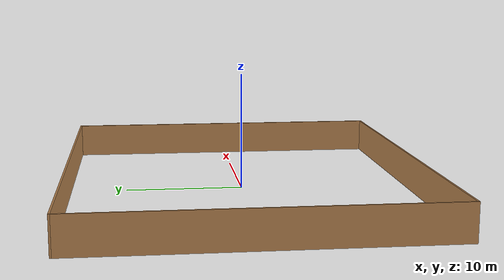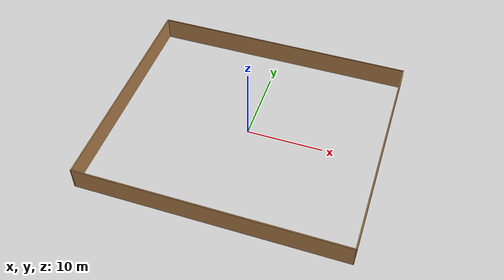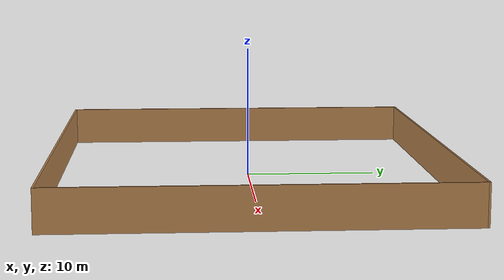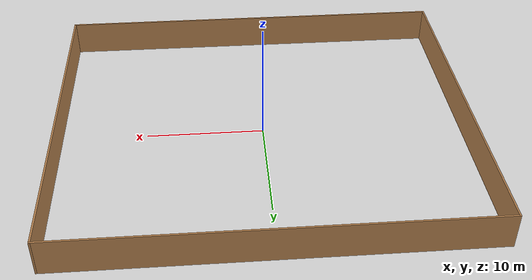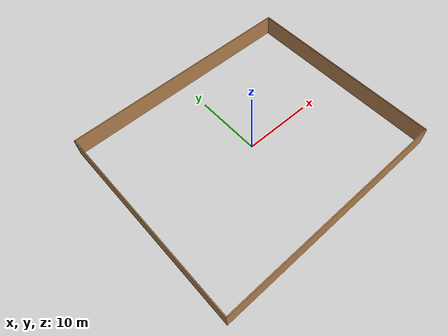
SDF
<?xml version='1.0'?>
<sdf version='1.6'>
  <model name='turtlebot3_square'>
    <pose frame=''>0 0 0 0 -0 0</pose>
    <link name='Wall_0'>
      <collision name='Wall_0_Collision'>
        <geometry>
          <box>
            <size>30 0.15 3.1</size>
          </box>
        </geometry>
        <pose frame=''>0 0 1.25 0 -0 0</pose>
      </collision>
      <visual name='Wall_0_Visual'>
        <pose frame=''>0 0 1.25 0 -0 0</pose>
        <geometry>
          <box>
            <size>30 0.15 3.1</size>
          </box>
        </geometry>
        <material>
          <script>
            <uri>file://media/materials/scripts/gazebo.material</uri>
            <name>Gazebo/Wood</name>
          </script>
          <ambient>1 1 1 1</ambient>
        </material>
      </visual>
      <pose frame=''>-17.425 0 0 0 -0 -1.5708</pose>
    </link>
    <link name='Wall_2'>
      <collision name='Wall_2_Collision'>
        <geometry>
          <box>
            <size>35 0.15 3.1</size>
          </box>
        </geometry>
        <pose frame=''>0 0 1.25 0 -0 0</pose>
      </collision>
      <visual name='Wall_2_Visual'>
        <pose frame=''>0 0 1.25 0 -0 0</pose>
        <geometry>
          <box>
            <size>35 0.15 3.1</size>
          </box>
        </geometry>
        <material>
          <script>
            <uri>file://media/materials/scripts/gazebo.material</uri>
            <name>Gazebo/Wood</name>
          </script>
          <ambient>1 1 1 1</ambient>
        </material>
      </visual>
      <pose frame=''>0 -14.925 0 0 -0 0</pose>
    </link>
    <link name='Wall_3'>
      <collision name='Wall_3_Collision'>
        <geometry>
          <box>
            <size>30 0.15 3.1</size>
          </box>
        </geometry>
        <pose frame=''>0 0 1.25 0 -0 0</pose>
      </collision>
      <visual name='Wall_3_Visual'>
        <pose frame=''>0 0 1.25 0 -0 0</pose>
        <geometry>
          <box>
            <size>30 0.15 3.1</size>
          </box>
        </geometry>
        <material>
          <script>
            <uri>file://media/materials/scripts/gazebo.material</uri>
            <name>Gazebo/Wood</name>
          </script>
          <ambient>1 1 1 1</ambient>
        </material>
      </visual>
      <pose frame=''>17.425 0 0 0 -0 1.5708</pose>
    </link>
    <link name='Wall_4'>
      <collision name='Wall_4_Collision'>
        <geometry>
          <box>
            <size>35 0.15 3.1</size>
          </box>
        </geometry>
        <pose frame=''>0 0 1.25 0 -0 0</pose>
      </collision>
      <visual name='Wall_4_Visual'>
        <pose frame=''>0 0 1.25 0 -0 0</pose>
        <geometry>
          <box>
            <size>35 0.15 3.1</size>
          </box>
        </geometry>
        <material>
          <script>
            <uri>file://media/materials/scripts/gazebo.material</uri>
            <name>Gazebo/Wood</name>
          </script>
          <ambient>1 1 1 1</ambient>
        </material>
      </visual>
      <pose frame=''>0 14.925 0 0 -0 3.14159</pose>
    </link>
    <static>1</static>
  </model>
</sdf>
